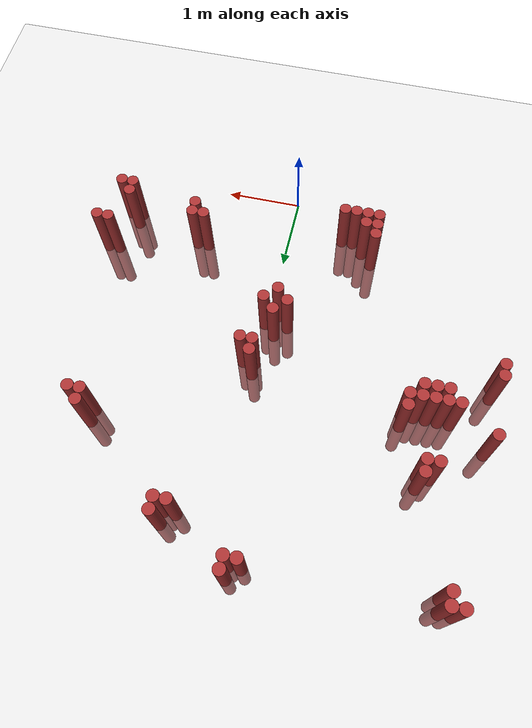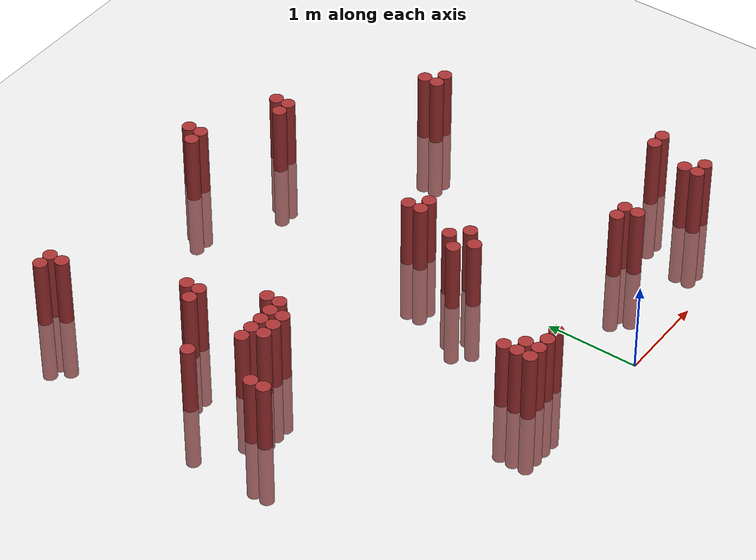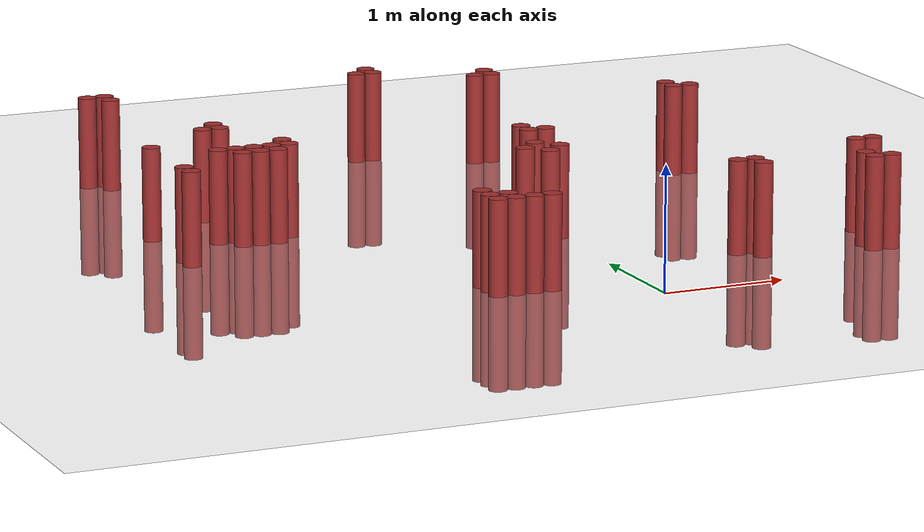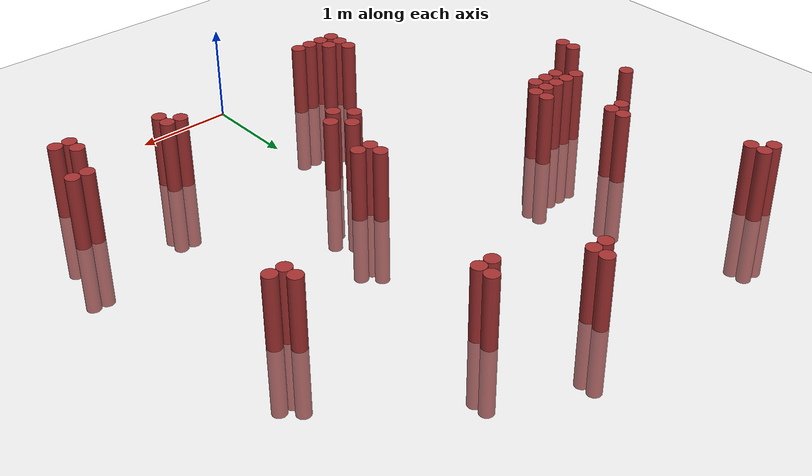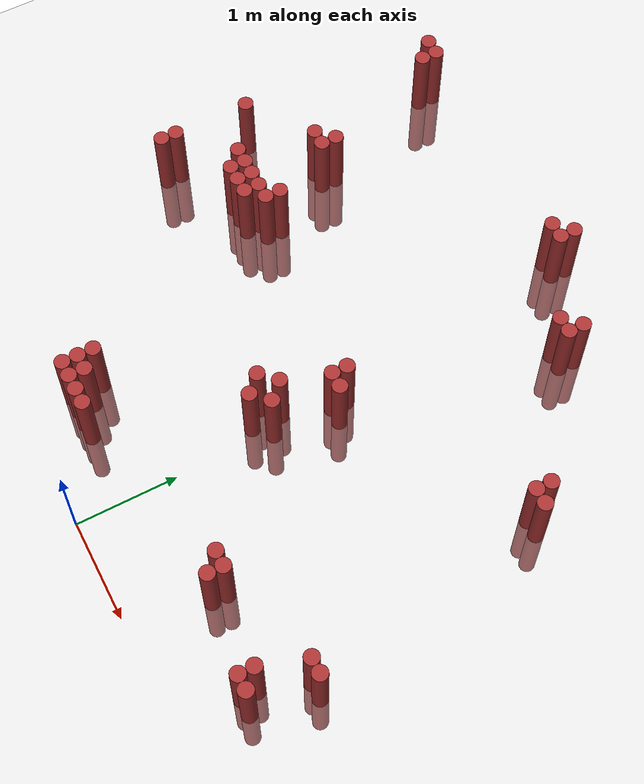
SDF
<sdf version="1.6">
 <world name="default">
  <model name="ground_plane">
   <static>1</static>
   <link name="link">
    <collision name="collision">
     <geometry><plane><normal>0 0 1</normal><size>100 100</size></plane></geometry>
     <surface><friction><ode><mu>100</mu><mu2>50</mu2></ode></friction></surface>
    </collision>
    <visual name="visual">
     <cast_shadows>0</cast_shadows>
     <geometry><plane><normal>0 0 1</normal><size>100 100</size></plane></geometry>
     <material>
      <script><uri>file://media/materials/scripts/gazebo.material</uri><name>Gazebo/Grey</name></script>
     </material>
    </visual>
   </link>
  </model>
  <model name="unit_cylinder_280">
   <static>1</static>
   <pose>-2.975000 2.275000 0.000000 0.000000 0.000000 0.000000</pose>
   <link name="link">
    <inertial>
     <mass>1</mass>
     <inertia><ixx>0.145833</ixx><ixy>0</ixy><ixz>0</ixz><iyy>0.145833</iyy><iyz>0</iyz><izz>0.125</izz></inertia>
    </inertial>
    <collision name="collision">
     <geometry><cylinder><radius>0.075000</radius><length>1.5</length></cylinder></geometry>
    </collision>
    <visual name="visual">
     <geometry><cylinder><radius>0.075000</radius><length>1.5</length></cylinder></geometry>
     <material>
      <ambient>0.648000 0.192000 0.192000 1</ambient>
      <diffuse>0.648000 0.192000 0.192000 1</diffuse>
     </material>
     <material>
      <script><name>Gazebo/Grey</name><uri>file://media/materials/scripts/gazebo.material</uri></script>
     </material>
    </visual>
   </link>
  </model>
  <model name="unit_cylinder_281">
   <static>1</static>
   <pose>-2.975000 2.425000 0.000000 0.000000 0.000000 0.000000</pose>
   <link name="link">
    <inertial>
     <mass>1</mass>
     <inertia><ixx>0.145833</ixx><ixy>0</ixy><ixz>0</ixz><iyy>0.145833</iyy><iyz>0</iyz><izz>0.125</izz></inertia>
    </inertial>
    <collision name="collision">
     <geometry><cylinder><radius>0.075000</radius><length>1.5</length></cylinder></geometry>
    </collision>
    <visual name="visual">
     <geometry><cylinder><radius>0.075000</radius><length>1.5</length></cylinder></geometry>
     <material>
      <ambient>0.648000 0.192000 0.192000 1</ambient>
      <diffuse>0.648000 0.192000 0.192000 1</diffuse>
     </material>
     <material>
      <script><name>Gazebo/Grey</name><uri>file://media/materials/scripts/gazebo.material</uri></script>
     </material>
    </visual>
   </link>
  </model>
  <model name="unit_cylinder_282">
   <static>1</static>
   <pose>-2.975000 3.175000 0.000000 0.000000 0.000000 0.000000</pose>
   <link name="link">
    <inertial>
     <mass>1</mass>
     <inertia><ixx>0.145833</ixx><ixy>0</ixy><ixz>0</ixz><iyy>0.145833</iyy><iyz>0</iyz><izz>0.125</izz></inertia>
    </inertial>
    <collision name="collision">
     <geometry><cylinder><radius>0.075000</radius><length>1.5</length></cylinder></geometry>
    </collision>
    <visual name="visual">
     <geometry><cylinder><radius>0.075000</radius><length>1.5</length></cylinder></geometry>
     <material>
      <ambient>0.648000 0.192000 0.192000 1</ambient>
      <diffuse>0.648000 0.192000 0.192000 1</diffuse>
     </material>
     <material>
      <script><name>Gazebo/Grey</name><uri>file://media/materials/scripts/gazebo.material</uri></script>
     </material>
    </visual>
   </link>
  </model>
  <model name="unit_cylinder_283">
   <static>1</static>
   <pose>-2.825000 5.125000 0.000000 0.000000 0.000000 0.000000</pose>
   <link name="link">
    <inertial>
     <mass>1</mass>
     <inertia><ixx>0.145833</ixx><ixy>0</ixy><ixz>0</ixz><iyy>0.145833</iyy><iyz>0</iyz><izz>0.125</izz></inertia>
    </inertial>
    <collision name="collision">
     <geometry><cylinder><radius>0.075000</radius><length>1.5</length></cylinder></geometry>
    </collision>
    <visual name="visual">
     <geometry><cylinder><radius>0.075000</radius><length>1.5</length></cylinder></geometry>
     <material>
      <ambient>0.648000 0.192000 0.192000 1</ambient>
      <diffuse>0.648000 0.192000 0.192000 1</diffuse>
     </material>
     <material>
      <script><name>Gazebo/Grey</name><uri>file://media/materials/scripts/gazebo.material</uri></script>
     </material>
    </visual>
   </link>
  </model>
  <model name="unit_cylinder_284">
   <static>1</static>
   <pose>-2.675000 4.975000 0.000000 0.000000 0.000000 0.000000</pose>
   <link name="link">
    <inertial>
     <mass>1</mass>
     <inertia><ixx>0.145833</ixx><ixy>0</ixy><ixz>0</ixz><iyy>0.145833</iyy><iyz>0</iyz><izz>0.125</izz></inertia>
    </inertial>
    <collision name="collision">
     <geometry><cylinder><radius>0.075000</radius><length>1.5</length></cylinder></geometry>
    </collision>
    <visual name="visual">
     <geometry><cylinder><radius>0.075000</radius><length>1.5</length></cylinder></geometry>
     <material>
      <ambient>0.648000 0.192000 0.192000 1</ambient>
      <diffuse>0.648000 0.192000 0.192000 1</diffuse>
     </material>
     <material>
      <script><name>Gazebo/Grey</name><uri>file://media/materials/scripts/gazebo.material</uri></script>
     </material>
    </visual>
   </link>
  </model>
  <model name="unit_cylinder_285">
   <static>1</static>
   <pose>-2.675000 5.125000 0.000000 0.000000 0.000000 0.000000</pose>
   <link name="link">
    <inertial>
     <mass>1</mass>
     <inertia><ixx>0.145833</ixx><ixy>0</ixy><ixz>0</ixz><iyy>0.145833</iyy><iyz>0</iyz><izz>0.125</izz></inertia>
    </inertial>
    <collision name="collision">
     <geometry><cylinder><radius>0.075000</radius><length>1.5</length></cylinder></geometry>
    </collision>
    <visual name="visual">
     <geometry><cylinder><radius>0.075000</radius><length>1.5</length></cylinder></geometry>
     <material>
      <ambient>0.648000 0.192000 0.192000 1</ambient>
      <diffuse>0.648000 0.192000 0.192000 1</diffuse>
     </material>
     <material>
      <script><name>Gazebo/Grey</name><uri>file://media/materials/scripts/gazebo.material</uri></script>
     </material>
    </visual>
   </link>
  </model>
  <model name="unit_cylinder_286">
   <static>1</static>
   <pose>-2.525000 2.875000 0.000000 0.000000 0.000000 0.000000</pose>
   <link name="link">
    <inertial>
     <mass>1</mass>
     <inertia><ixx>0.145833</ixx><ixy>0</ixy><ixz>0</ixz><iyy>0.145833</iyy><iyz>0</iyz><izz>0.125</izz></inertia>
    </inertial>
    <collision name="collision">
     <geometry><cylinder><radius>0.075000</radius><length>1.5</length></cylinder></geometry>
    </collision>
    <visual name="visual">
     <geometry><cylinder><radius>0.075000</radius><length>1.5</length></cylinder></geometry>
     <material>
      <ambient>0.648000 0.192000 0.192000 1</ambient>
      <diffuse>0.648000 0.192000 0.192000 1</diffuse>
     </material>
     <material>
      <script><name>Gazebo/Grey</name><uri>file://media/materials/scripts/gazebo.material</uri></script>
     </material>
    </visual>
   </link>
  </model>
  <model name="unit_cylinder_287">
   <static>1</static>
   <pose>-2.375000 2.725000 0.000000 0.000000 0.000000 0.000000</pose>
   <link name="link">
    <inertial>
     <mass>1</mass>
     <inertia><ixx>0.145833</ixx><ixy>0</ixy><ixz>0</ixz><iyy>0.145833</iyy><iyz>0</iyz><izz>0.125</izz></inertia>
    </inertial>
    <collision name="collision">
     <geometry><cylinder><radius>0.075000</radius><length>1.5</length></cylinder></geometry>
    </collision>
    <visual name="visual">
     <geometry><cylinder><radius>0.075000</radius><length>1.5</length></cylinder></geometry>
     <material>
      <ambient>0.648000 0.192000 0.192000 1</ambient>
      <diffuse>0.648000 0.192000 0.192000 1</diffuse>
     </material>
     <material>
      <script><name>Gazebo/Grey</name><uri>file://media/materials/scripts/gazebo.material</uri></script>
     </material>
    </visual>
   </link>
  </model>
  <model name="unit_cylinder_288">
   <static>1</static>
   <pose>-2.375000 2.875000 0.000000 0.000000 0.000000 0.000000</pose>
   <link name="link">
    <inertial>
     <mass>1</mass>
     <inertia><ixx>0.145833</ixx><ixy>0</ixy><ixz>0</ixz><iyy>0.145833</iyy><iyz>0</iyz><izz>0.125</izz></inertia>
    </inertial>
    <collision name="collision">
     <geometry><cylinder><radius>0.075000</radius><length>1.5</length></cylinder></geometry>
    </collision>
    <visual name="visual">
     <geometry><cylinder><radius>0.075000</radius><length>1.5</length></cylinder></geometry>
     <material>
      <ambient>0.648000 0.192000 0.192000 1</ambient>
      <diffuse>0.648000 0.192000 0.192000 1</diffuse>
     </material>
     <material>
      <script><name>Gazebo/Grey</name><uri>file://media/materials/scripts/gazebo.material</uri></script>
     </material>
    </visual>
   </link>
  </model>
  <model name="unit_cylinder_289">
   <static>1</static>
   <pose>-2.375000 3.625000 0.000000 0.000000 0.000000 0.000000</pose>
   <link name="link">
    <inertial>
     <mass>1</mass>
     <inertia><ixx>0.145833</ixx><ixy>0</ixy><ixz>0</ixz><iyy>0.145833</iyy><iyz>0</iyz><izz>0.125</izz></inertia>
    </inertial>
    <collision name="collision">
     <geometry><cylinder><radius>0.075000</radius><length>1.5</length></cylinder></geometry>
    </collision>
    <visual name="visual">
     <geometry><cylinder><radius>0.075000</radius><length>1.5</length></cylinder></geometry>
     <material>
      <ambient>0.648000 0.192000 0.192000 1</ambient>
      <diffuse>0.648000 0.192000 0.192000 1</diffuse>
     </material>
     <material>
      <script><name>Gazebo/Grey</name><uri>file://media/materials/scripts/gazebo.material</uri></script>
     </material>
    </visual>
   </link>
  </model>
  <model name="unit_cylinder_290">
   <static>1</static>
   <pose>-2.225000 2.725000 0.000000 0.000000 0.000000 0.000000</pose>
   <link name="link">
    <inertial>
     <mass>1</mass>
     <inertia><ixx>0.145833</ixx><ixy>0</ixy><ixz>0</ixz><iyy>0.145833</iyy><iyz>0</iyz><izz>0.125</izz></inertia>
    </inertial>
    <collision name="collision">
     <geometry><cylinder><radius>0.075000</radius><length>1.5</length></cylinder></geometry>
    </collision>
    <visual name="visual">
     <geometry><cylinder><radius>0.075000</radius><length>1.5</length></cylinder></geometry>
     <material>
      <ambient>0.648000 0.192000 0.192000 1</ambient>
      <diffuse>0.648000 0.192000 0.192000 1</diffuse>
     </material>
     <material>
      <script><name>Gazebo/Grey</name><uri>file://media/materials/scripts/gazebo.material</uri></script>
     </material>
    </visual>
   </link>
  </model>
  <model name="unit_cylinder_291">
   <static>1</static>
   <pose>-2.225000 2.875000 0.000000 0.000000 0.000000 0.000000</pose>
   <link name="link">
    <inertial>
     <mass>1</mass>
     <inertia><ixx>0.145833</ixx><ixy>0</ixy><ixz>0</ixz><iyy>0.145833</iyy><iyz>0</iyz><izz>0.125</izz></inertia>
    </inertial>
    <collision name="collision">
     <geometry><cylinder><radius>0.075000</radius><length>1.5</length></cylinder></geometry>
    </collision>
    <visual name="visual">
     <geometry><cylinder><radius>0.075000</radius><length>1.5</length></cylinder></geometry>
     <material>
      <ambient>0.648000 0.192000 0.192000 1</ambient>
      <diffuse>0.648000 0.192000 0.192000 1</diffuse>
     </material>
     <material>
      <script><name>Gazebo/Grey</name><uri>file://media/materials/scripts/gazebo.material</uri></script>
     </material>
    </visual>
   </link>
  </model>
  <model name="unit_cylinder_292">
   <static>1</static>
   <pose>-2.225000 3.625000 0.000000 0.000000 0.000000 0.000000</pose>
   <link name="link">
    <inertial>
     <mass>1</mass>
     <inertia><ixx>0.145833</ixx><ixy>0</ixy><ixz>0</ixz><iyy>0.145833</iyy><iyz>0</iyz><izz>0.125</izz></inertia>
    </inertial>
    <collision name="collision">
     <geometry><cylinder><radius>0.075000</radius><length>1.5</length></cylinder></geometry>
    </collision>
    <visual name="visual">
     <geometry><cylinder><radius>0.075000</radius><length>1.5</length></cylinder></geometry>
     <material>
      <ambient>0.648000 0.192000 0.192000 1</ambient>
      <diffuse>0.648000 0.192000 0.192000 1</diffuse>
     </material>
     <material>
      <script><name>Gazebo/Grey</name><uri>file://media/materials/scripts/gazebo.material</uri></script>
     </material>
    </visual>
   </link>
  </model>
  <model name="unit_cylinder_293">
   <static>1</static>
   <pose>-2.225000 3.775000 0.000000 0.000000 0.000000 0.000000</pose>
   <link name="link">
    <inertial>
     <mass>1</mass>
     <inertia><ixx>0.145833</ixx><ixy>0</ixy><ixz>0</ixz><iyy>0.145833</iyy><iyz>0</iyz><izz>0.125</izz></inertia>
    </inertial>
    <collision name="collision">
     <geometry><cylinder><radius>0.075000</radius><length>1.5</length></cylinder></geometry>
    </collision>
    <visual name="visual">
     <geometry><cylinder><radius>0.075000</radius><length>1.5</length></cylinder></geometry>
     <material>
      <ambient>0.648000 0.192000 0.192000 1</ambient>
      <diffuse>0.648000 0.192000 0.192000 1</diffuse>
     </material>
     <material>
      <script><name>Gazebo/Grey</name><uri>file://media/materials/scripts/gazebo.material</uri></script>
     </material>
    </visual>
   </link>
  </model>
  <model name="unit_cylinder_296">
   <static>1</static>
   <pose>-2.075000 2.725000 0.000000 0.000000 0.000000 0.000000</pose>
   <link name="link">
    <inertial>
     <mass>1</mass>
     <inertia><ixx>0.145833</ixx><ixy>0</ixy><ixz>0</ixz><iyy>0.145833</iyy><iyz>0</iyz><izz>0.125</izz></inertia>
    </inertial>
    <collision name="collision">
     <geometry><cylinder><radius>0.075000</radius><length>1.5</length></cylinder></geometry>
    </collision>
    <visual name="visual">
     <geometry><cylinder><radius>0.075000</radius><length>1.5</length></cylinder></geometry>
     <material>
      <ambient>0.648000 0.192000 0.192000 1</ambient>
      <diffuse>0.648000 0.192000 0.192000 1</diffuse>
     </material>
     <material>
      <script><name>Gazebo/Grey</name><uri>file://media/materials/scripts/gazebo.material</uri></script>
     </material>
    </visual>
   </link>
  </model>
  <model name="unit_cylinder_297">
   <static>1</static>
   <pose>-2.075000 2.875000 0.000000 0.000000 0.000000 0.000000</pose>
   <link name="link">
    <inertial>
     <mass>1</mass>
     <inertia><ixx>0.145833</ixx><ixy>0</ixy><ixz>0</ixz><iyy>0.145833</iyy><iyz>0</iyz><izz>0.125</izz></inertia>
    </inertial>
    <collision name="collision">
     <geometry><cylinder><radius>0.075000</radius><length>1.5</length></cylinder></geometry>
    </collision>
    <visual name="visual">
     <geometry><cylinder><radius>0.075000</radius><length>1.5</length></cylinder></geometry>
     <material>
      <ambient>0.648000 0.192000 0.192000 1</ambient>
      <diffuse>0.648000 0.192000 0.192000 1</diffuse>
     </material>
     <material>
      <script><name>Gazebo/Grey</name><uri>file://media/materials/scripts/gazebo.material</uri></script>
     </material>
    </visual>
   </link>
  </model>
  <model name="unit_cylinder_300">
   <static>1</static>
   <pose>-1.925000 2.875000 0.000000 0.000000 0.000000 0.000000</pose>
   <link name="link">
    <inertial>
     <mass>1</mass>
     <inertia><ixx>0.145833</ixx><ixy>0</ixy><ixz>0</ixz><iyy>0.145833</iyy><iyz>0</iyz><izz>0.125</izz></inertia>
    </inertial>
    <collision name="collision">
     <geometry><cylinder><radius>0.075000</radius><length>1.5</length></cylinder></geometry>
    </collision>
    <visual name="visual">
     <geometry><cylinder><radius>0.075000</radius><length>1.5</length></cylinder></geometry>
     <material>
      <ambient>0.648000 0.192000 0.192000 1</ambient>
      <diffuse>0.648000 0.192000 0.192000 1</diffuse>
     </material>
     <material>
      <script><name>Gazebo/Grey</name><uri>file://media/materials/scripts/gazebo.material</uri></script>
     </material>
    </visual>
   </link>
  </model>
  <model name="unit_cylinder_301">
   <static>1</static>
   <pose>-1.925000 3.025000 0.000000 0.000000 0.000000 0.000000</pose>
   <link name="link">
    <inertial>
     <mass>1</mass>
     <inertia><ixx>0.145833</ixx><ixy>0</ixy><ixz>0</ixz><iyy>0.145833</iyy><iyz>0</iyz><izz>0.125</izz></inertia>
    </inertial>
    <collision name="collision">
     <geometry><cylinder><radius>0.075000</radius><length>1.5</length></cylinder></geometry>
    </collision>
    <visual name="visual">
     <geometry><cylinder><radius>0.075000</radius><length>1.5</length></cylinder></geometry>
     <material>
      <ambient>0.648000 0.192000 0.192000 1</ambient>
      <diffuse>0.648000 0.192000 0.192000 1</diffuse>
     </material>
     <material>
      <script><name>Gazebo/Grey</name><uri>file://media/materials/scripts/gazebo.material</uri></script>
     </material>
    </visual>
   </link>
  </model>
  <model name="unit_cylinder_306">
   <static>1</static>
   <pose>-1.175000 0.475000 0.000000 0.000000 0.000000 0.000000</pose>
   <link name="link">
    <inertial>
     <mass>1</mass>
     <inertia><ixx>0.145833</ixx><ixy>0</ixy><ixz>0</ixz><iyy>0.145833</iyy><iyz>0</iyz><izz>0.125</izz></inertia>
    </inertial>
    <collision name="collision">
     <geometry><cylinder><radius>0.075000</radius><length>1.5</length></cylinder></geometry>
    </collision>
    <visual name="visual">
     <geometry><cylinder><radius>0.075000</radius><length>1.5</length></cylinder></geometry>
     <material>
      <ambient>0.648000 0.192000 0.192000 1</ambient>
      <diffuse>0.648000 0.192000 0.192000 1</diffuse>
     </material>
     <material>
      <script><name>Gazebo/Grey</name><uri>file://media/materials/scripts/gazebo.material</uri></script>
     </material>
    </visual>
   </link>
  </model>
  <model name="unit_cylinder_307">
   <static>1</static>
   <pose>-1.175000 0.625000 0.000000 0.000000 0.000000 0.000000</pose>
   <link name="link">
    <inertial>
     <mass>1</mass>
     <inertia><ixx>0.145833</ixx><ixy>0</ixy><ixz>0</ixz><iyy>0.145833</iyy><iyz>0</iyz><izz>0.125</izz></inertia>
    </inertial>
    <collision name="collision">
     <geometry><cylinder><radius>0.075000</radius><length>1.5</length></cylinder></geometry>
    </collision>
    <visual name="visual">
     <geometry><cylinder><radius>0.075000</radius><length>1.5</length></cylinder></geometry>
     <material>
      <ambient>0.648000 0.192000 0.192000 1</ambient>
      <diffuse>0.648000 0.192000 0.192000 1</diffuse>
     </material>
     <material>
      <script><name>Gazebo/Grey</name><uri>file://media/materials/scripts/gazebo.material</uri></script>
     </material>
    </visual>
   </link>
  </model>
  <model name="unit_cylinder_308">
   <static>1</static>
   <pose>-1.175000 0.775000 0.000000 0.000000 0.000000 0.000000</pose>
   <link name="link">
    <inertial>
     <mass>1</mass>
     <inertia><ixx>0.145833</ixx><ixy>0</ixy><ixz>0</ixz><iyy>0.145833</iyy><iyz>0</iyz><izz>0.125</izz></inertia>
    </inertial>
    <collision name="collision">
     <geometry><cylinder><radius>0.075000</radius><length>1.5</length></cylinder></geometry>
    </collision>
    <visual name="visual">
     <geometry><cylinder><radius>0.075000</radius><length>1.5</length></cylinder></geometry>
     <material>
      <ambient>0.648000 0.192000 0.192000 1</ambient>
      <diffuse>0.648000 0.192000 0.192000 1</diffuse>
     </material>
     <material>
      <script><name>Gazebo/Grey</name><uri>file://media/materials/scripts/gazebo.material</uri></script>
     </material>
    </visual>
   </link>
  </model>
  <model name="unit_cylinder_311">
   <static>1</static>
   <pose>-1.025000 0.475000 0.000000 0.000000 0.000000 0.000000</pose>
   <link name="link">
    <inertial>
     <mass>1</mass>
     <inertia><ixx>0.145833</ixx><ixy>0</ixy><ixz>0</ixz><iyy>0.145833</iyy><iyz>0</iyz><izz>0.125</izz></inertia>
    </inertial>
    <collision name="collision">
     <geometry><cylinder><radius>0.075000</radius><length>1.5</length></cylinder></geometry>
    </collision>
    <visual name="visual">
     <geometry><cylinder><radius>0.075000</radius><length>1.5</length></cylinder></geometry>
     <material>
      <ambient>0.648000 0.192000 0.192000 1</ambient>
      <diffuse>0.648000 0.192000 0.192000 1</diffuse>
     </material>
     <material>
      <script><name>Gazebo/Grey</name><uri>file://media/materials/scripts/gazebo.material</uri></script>
     </material>
    </visual>
   </link>
  </model>
  <model name="unit_cylinder_312">
   <static>1</static>
   <pose>-1.025000 0.625000 0.000000 0.000000 0.000000 0.000000</pose>
   <link name="link">
    <inertial>
     <mass>1</mass>
     <inertia><ixx>0.145833</ixx><ixy>0</ixy><ixz>0</ixz><iyy>0.145833</iyy><iyz>0</iyz><izz>0.125</izz></inertia>
    </inertial>
    <collision name="collision">
     <geometry><cylinder><radius>0.075000</radius><length>1.5</length></cylinder></geometry>
    </collision>
    <visual name="visual">
     <geometry><cylinder><radius>0.075000</radius><length>1.5</length></cylinder></geometry>
     <material>
      <ambient>0.648000 0.192000 0.192000 1</ambient>
      <diffuse>0.648000 0.192000 0.192000 1</diffuse>
     </material>
     <material>
      <script><name>Gazebo/Grey</name><uri>file://media/materials/scripts/gazebo.material</uri></script>
     </material>
    </visual>
   </link>
  </model>
  <model name="unit_cylinder_317">
   <static>1</static>
   <pose>-0.875000 0.475000 0.000000 0.000000 0.000000 0.000000</pose>
   <link name="link">
    <inertial>
     <mass>1</mass>
     <inertia><ixx>0.145833</ixx><ixy>0</ixy><ixz>0</ixz><iyy>0.145833</iyy><iyz>0</iyz><izz>0.125</izz></inertia>
    </inertial>
    <collision name="collision">
     <geometry><cylinder><radius>0.075000</radius><length>1.5</length></cylinder></geometry>
    </collision>
    <visual name="visual">
     <geometry><cylinder><radius>0.075000</radius><length>1.5</length></cylinder></geometry>
     <material>
      <ambient>0.648000 0.192000 0.192000 1</ambient>
      <diffuse>0.648000 0.192000 0.192000 1</diffuse>
     </material>
     <material>
      <script><name>Gazebo/Grey</name><uri>file://media/materials/scripts/gazebo.material</uri></script>
     </material>
    </visual>
   </link>
  </model>
  <model name="unit_cylinder_320">
   <static>1</static>
   <pose>-0.725000 0.475000 0.000000 0.000000 0.000000 0.000000</pose>
   <link name="link">
    <inertial>
     <mass>1</mass>
     <inertia><ixx>0.145833</ixx><ixy>0</ixy><ixz>0</ixz><iyy>0.145833</iyy><iyz>0</iyz><izz>0.125</izz></inertia>
    </inertial>
    <collision name="collision">
     <geometry><cylinder><radius>0.075000</radius><length>1.5</length></cylinder></geometry>
    </collision>
    <visual name="visual">
     <geometry><cylinder><radius>0.075000</radius><length>1.5</length></cylinder></geometry>
     <material>
      <ambient>0.648000 0.192000 0.192000 1</ambient>
      <diffuse>0.648000 0.192000 0.192000 1</diffuse>
     </material>
     <material>
      <script><name>Gazebo/Grey</name><uri>file://media/materials/scripts/gazebo.material</uri></script>
     </material>
    </visual>
   </link>
  </model>
  <model name="unit_cylinder_321">
   <static>1</static>
   <pose>-0.425000 5.125000 0.000000 0.000000 0.000000 0.000000</pose>
   <link name="link">
    <inertial>
     <mass>1</mass>
     <inertia><ixx>0.145833</ixx><ixy>0</ixy><ixz>0</ixz><iyy>0.145833</iyy><iyz>0</iyz><izz>0.125</izz></inertia>
    </inertial>
    <collision name="collision">
     <geometry><cylinder><radius>0.075000</radius><length>1.5</length></cylinder></geometry>
    </collision>
    <visual name="visual">
     <geometry><cylinder><radius>0.075000</radius><length>1.5</length></cylinder></geometry>
     <material>
      <ambient>0.648000 0.192000 0.192000 1</ambient>
      <diffuse>0.648000 0.192000 0.192000 1</diffuse>
     </material>
     <material>
      <script><name>Gazebo/Grey</name><uri>file://media/materials/scripts/gazebo.material</uri></script>
     </material>
    </visual>
   </link>
  </model>
  <model name="unit_cylinder_322">
   <static>1</static>
   <pose>-0.275000 1.975000 0.000000 0.000000 0.000000 0.000000</pose>
   <link name="link">
    <inertial>
     <mass>1</mass>
     <inertia><ixx>0.145833</ixx><ixy>0</ixy><ixz>0</ixz><iyy>0.145833</iyy><iyz>0</iyz><izz>0.125</izz></inertia>
    </inertial>
    <collision name="collision">
     <geometry><cylinder><radius>0.075000</radius><length>1.5</length></cylinder></geometry>
    </collision>
    <visual name="visual">
     <geometry><cylinder><radius>0.075000</radius><length>1.5</length></cylinder></geometry>
     <material>
      <ambient>0.648000 0.192000 0.192000 1</ambient>
      <diffuse>0.648000 0.192000 0.192000 1</diffuse>
     </material>
     <material>
      <script><name>Gazebo/Grey</name><uri>file://media/materials/scripts/gazebo.material</uri></script>
     </material>
    </visual>
   </link>
  </model>
  <model name="unit_cylinder_323">
   <static>1</static>
   <pose>-0.275000 5.125000 0.000000 0.000000 0.000000 0.000000</pose>
   <link name="link">
    <inertial>
     <mass>1</mass>
     <inertia><ixx>0.145833</ixx><ixy>0</ixy><ixz>0</ixz><iyy>0.145833</iyy><iyz>0</iyz><izz>0.125</izz></inertia>
    </inertial>
    <collision name="collision">
     <geometry><cylinder><radius>0.075000</radius><length>1.5</length></cylinder></geometry>
    </collision>
    <visual name="visual">
     <geometry><cylinder><radius>0.075000</radius><length>1.5</length></cylinder></geometry>
     <material>
      <ambient>0.648000 0.192000 0.192000 1</ambient>
      <diffuse>0.648000 0.192000 0.192000 1</diffuse>
     </material>
     <material>
      <script><name>Gazebo/Grey</name><uri>file://media/materials/scripts/gazebo.material</uri></script>
     </material>
    </visual>
   </link>
  </model>
  <model name="unit_cylinder_324">
   <static>1</static>
   <pose>-0.275000 5.275000 0.000000 0.000000 0.000000 0.000000</pose>
   <link name="link">
    <inertial>
     <mass>1</mass>
     <inertia><ixx>0.145833</ixx><ixy>0</ixy><ixz>0</ixz><iyy>0.145833</iyy><iyz>0</iyz><izz>0.125</izz></inertia>
    </inertial>
    <collision name="collision">
     <geometry><cylinder><radius>0.075000</radius><length>1.5</length></cylinder></geometry>
    </collision>
    <visual name="visual">
     <geometry><cylinder><radius>0.075000</radius><length>1.5</length></cylinder></geometry>
     <material>
      <ambient>0.648000 0.192000 0.192000 1</ambient>
      <diffuse>0.648000 0.192000 0.192000 1</diffuse>
     </material>
     <material>
      <script><name>Gazebo/Grey</name><uri>file://media/materials/scripts/gazebo.material</uri></script>
     </material>
    </visual>
   </link>
  </model>
  <model name="unit_cylinder_325">
   <static>1</static>
   <pose>-0.125000 1.825000 0.000000 0.000000 0.000000 0.000000</pose>
   <link name="link">
    <inertial>
     <mass>1</mass>
     <inertia><ixx>0.145833</ixx><ixy>0</ixy><ixz>0</ixz><iyy>0.145833</iyy><iyz>0</iyz><izz>0.125</izz></inertia>
    </inertial>
    <collision name="collision">
     <geometry><cylinder><radius>0.075000</radius><length>1.5</length></cylinder></geometry>
    </collision>
    <visual name="visual">
     <geometry><cylinder><radius>0.075000</radius><length>1.5</length></cylinder></geometry>
     <material>
      <ambient>0.648000 0.192000 0.192000 1</ambient>
      <diffuse>0.648000 0.192000 0.192000 1</diffuse>
     </material>
     <material>
      <script><name>Gazebo/Grey</name><uri>file://media/materials/scripts/gazebo.material</uri></script>
     </material>
    </visual>
   </link>
  </model>
  <model name="unit_cylinder_326">
   <static>1</static>
   <pose>-0.125000 2.125000 0.000000 0.000000 0.000000 0.000000</pose>
   <link name="link">
    <inertial>
     <mass>1</mass>
     <inertia><ixx>0.145833</ixx><ixy>0</ixy><ixz>0</ixz><iyy>0.145833</iyy><iyz>0</iyz><izz>0.125</izz></inertia>
    </inertial>
    <collision name="collision">
     <geometry><cylinder><radius>0.075000</radius><length>1.5</length></cylinder></geometry>
    </collision>
    <visual name="visual">
     <geometry><cylinder><radius>0.075000</radius><length>1.5</length></cylinder></geometry>
     <material>
      <ambient>0.648000 0.192000 0.192000 1</ambient>
      <diffuse>0.648000 0.192000 0.192000 1</diffuse>
     </material>
     <material>
      <script><name>Gazebo/Grey</name><uri>file://media/materials/scripts/gazebo.material</uri></script>
     </material>
    </visual>
   </link>
  </model>
  <model name="unit_cylinder_327">
   <static>1</static>
   <pose>0.025000 1.975000 0.000000 0.000000 0.000000 0.000000</pose>
   <link name="link">
    <inertial>
     <mass>1</mass>
     <inertia><ixx>0.145833</ixx><ixy>0</ixy><ixz>0</ixz><iyy>0.145833</iyy><iyz>0</iyz><izz>0.125</izz></inertia>
    </inertial>
    <collision name="collision">
     <geometry><cylinder><radius>0.075000</radius><length>1.5</length></cylinder></geometry>
    </collision>
    <visual name="visual">
     <geometry><cylinder><radius>0.075000</radius><length>1.5</length></cylinder></geometry>
     <material>
      <ambient>0.648000 0.192000 0.192000 1</ambient>
      <diffuse>0.648000 0.192000 0.192000 1</diffuse>
     </material>
     <material>
      <script><name>Gazebo/Grey</name><uri>file://media/materials/scripts/gazebo.material</uri></script>
     </material>
    </visual>
   </link>
  </model>
  <model name="unit_cylinder_328">
   <static>1</static>
   <pose>0.025000 2.575000 0.000000 0.000000 0.000000 0.000000</pose>
   <link name="link">
    <inertial>
     <mass>1</mass>
     <inertia><ixx>0.145833</ixx><ixy>0</ixy><ixz>0</ixz><iyy>0.145833</iyy><iyz>0</iyz><izz>0.125</izz></inertia>
    </inertial>
    <collision name="collision">
     <geometry><cylinder><radius>0.075000</radius><length>1.5</length></cylinder></geometry>
    </collision>
    <visual name="visual">
     <geometry><cylinder><radius>0.075000</radius><length>1.5</length></cylinder></geometry>
     <material>
      <ambient>0.648000 0.192000 0.192000 1</ambient>
      <diffuse>0.648000 0.192000 0.192000 1</diffuse>
     </material>
     <material>
      <script><name>Gazebo/Grey</name><uri>file://media/materials/scripts/gazebo.material</uri></script>
     </material>
    </visual>
   </link>
  </model>
  <model name="unit_cylinder_329">
   <static>1</static>
   <pose>0.025000 2.725000 0.000000 0.000000 0.000000 0.000000</pose>
   <link name="link">
    <inertial>
     <mass>1</mass>
     <inertia><ixx>0.145833</ixx><ixy>0</ixy><ixz>0</ixz><iyy>0.145833</iyy><iyz>0</iyz><izz>0.125</izz></inertia>
    </inertial>
    <collision name="collision">
     <geometry><cylinder><radius>0.075000</radius><length>1.5</length></cylinder></geometry>
    </collision>
    <visual name="visual">
     <geometry><cylinder><radius>0.075000</radius><length>1.5</length></cylinder></geometry>
     <material>
      <ambient>0.648000 0.192000 0.192000 1</ambient>
      <diffuse>0.648000 0.192000 0.192000 1</diffuse>
     </material>
     <material>
      <script><name>Gazebo/Grey</name><uri>file://media/materials/scripts/gazebo.material</uri></script>
     </material>
    </visual>
   </link>
  </model>
  <model name="unit_cylinder_330">
   <static>1</static>
   <pose>0.175000 2.575000 0.000000 0.000000 0.000000 0.000000</pose>
   <link name="link">
    <inertial>
     <mass>1</mass>
     <inertia><ixx>0.145833</ixx><ixy>0</ixy><ixz>0</ixz><iyy>0.145833</iyy><iyz>0</iyz><izz>0.125</izz></inertia>
    </inertial>
    <collision name="collision">
     <geometry><cylinder><radius>0.075000</radius><length>1.5</length></cylinder></geometry>
    </collision>
    <visual name="visual">
     <geometry><cylinder><radius>0.075000</radius><length>1.5</length></cylinder></geometry>
     <material>
      <ambient>0.648000 0.192000 0.192000 1</ambient>
      <diffuse>0.648000 0.192000 0.192000 1</diffuse>
     </material>
     <material>
      <script><name>Gazebo/Grey</name><uri>file://media/materials/scripts/gazebo.material</uri></script>
     </material>
    </visual>
   </link>
  </model>
  <model name="unit_cylinder_336">
   <static>1</static>
   <pose>0.475000 4.675000 0.000000 0.000000 0.000000 0.000000</pose>
   <link name="link">
    <inertial>
     <mass>1</mass>
     <inertia><ixx>0.145833</ixx><ixy>0</ixy><ixz>0</ixz><iyy>0.145833</iyy><iyz>0</iyz><izz>0.125</izz></inertia>
    </inertial>
    <collision name="collision">
     <geometry><cylinder><radius>0.075000</radius><length>1.5</length></cylinder></geometry>
    </collision>
    <visual name="visual">
     <geometry><cylinder><radius>0.075000</radius><length>1.5</length></cylinder></geometry>
     <material>
      <ambient>0.648000 0.192000 0.192000 1</ambient>
      <diffuse>0.648000 0.192000 0.192000 1</diffuse>
     </material>
     <material>
      <script><name>Gazebo/Grey</name><uri>file://media/materials/scripts/gazebo.material</uri></script>
     </material>
    </visual>
   </link>
  </model>
  <model name="unit_cylinder_339">
   <static>1</static>
   <pose>0.625000 4.675000 0.000000 0.000000 0.000000 0.000000</pose>
   <link name="link">
    <inertial>
     <mass>1</mass>
     <inertia><ixx>0.145833</ixx><ixy>0</ixy><ixz>0</ixz><iyy>0.145833</iyy><iyz>0</iyz><izz>0.125</izz></inertia>
    </inertial>
    <collision name="collision">
     <geometry><cylinder><radius>0.075000</radius><length>1.5</length></cylinder></geometry>
    </collision>
    <visual name="visual">
     <geometry><cylinder><radius>0.075000</radius><length>1.5</length></cylinder></geometry>
     <material>
      <ambient>0.648000 0.192000 0.192000 1</ambient>
      <diffuse>0.648000 0.192000 0.192000 1</diffuse>
     </material>
     <material>
      <script><name>Gazebo/Grey</name><uri>file://media/materials/scripts/gazebo.material</uri></script>
     </material>
    </visual>
   </link>
  </model>
  <model name="unit_cylinder_340">
   <static>1</static>
   <pose>0.625000 4.825000 0.000000 0.000000 0.000000 0.000000</pose>
   <link name="link">
    <inertial>
     <mass>1</mass>
     <inertia><ixx>0.145833</ixx><ixy>0</ixy><ixz>0</ixz><iyy>0.145833</iyy><iyz>0</iyz><izz>0.125</izz></inertia>
    </inertial>
    <collision name="collision">
     <geometry><cylinder><radius>0.075000</radius><length>1.5</length></cylinder></geometry>
    </collision>
    <visual name="visual">
     <geometry><cylinder><radius>0.075000</radius><length>1.5</length></cylinder></geometry>
     <material>
      <ambient>0.648000 0.192000 0.192000 1</ambient>
      <diffuse>0.648000 0.192000 0.192000 1</diffuse>
     </material>
     <material>
      <script><name>Gazebo/Grey</name><uri>file://media/materials/scripts/gazebo.material</uri></script>
     </material>
    </visual>
   </link>
  </model>
  <model name="unit_cylinder_341">
   <static>1</static>
   <pose>1.075000 0.925000 0.000000 0.000000 0.000000 0.000000</pose>
   <link name="link">
    <inertial>
     <mass>1</mass>
     <inertia><ixx>0.145833</ixx><ixy>0</ixy><ixz>0</ixz><iyy>0.145833</iyy><iyz>0</iyz><izz>0.125</izz></inertia>
    </inertial>
    <collision name="collision">
     <geometry><cylinder><radius>0.075000</radius><length>1.5</length></cylinder></geometry>
    </collision>
    <visual name="visual">
     <geometry><cylinder><radius>0.075000</radius><length>1.5</length></cylinder></geometry>
     <material>
      <ambient>0.648000 0.192000 0.192000 1</ambient>
      <diffuse>0.648000 0.192000 0.192000 1</diffuse>
     </material>
     <material>
      <script><name>Gazebo/Grey</name><uri>file://media/materials/scripts/gazebo.material</uri></script>
     </material>
    </visual>
   </link>
  </model>
  <model name="unit_cylinder_342">
   <static>1</static>
   <pose>1.225000 0.775000 0.000000 0.000000 0.000000 0.000000</pose>
   <link name="link">
    <inertial>
     <mass>1</mass>
     <inertia><ixx>0.145833</ixx><ixy>0</ixy><ixz>0</ixz><iyy>0.145833</iyy><iyz>0</iyz><izz>0.125</izz></inertia>
    </inertial>
    <collision name="collision">
     <geometry><cylinder><radius>0.075000</radius><length>1.5</length></cylinder></geometry>
    </collision>
    <visual name="visual">
     <geometry><cylinder><radius>0.075000</radius><length>1.5</length></cylinder></geometry>
     <material>
      <ambient>0.648000 0.192000 0.192000 1</ambient>
      <diffuse>0.648000 0.192000 0.192000 1</diffuse>
     </material>
     <material>
      <script><name>Gazebo/Grey</name><uri>file://media/materials/scripts/gazebo.material</uri></script>
     </material>
    </visual>
   </link>
  </model>
  <model name="unit_cylinder_343">
   <static>1</static>
   <pose>1.225000 0.925000 0.000000 0.000000 0.000000 0.000000</pose>
   <link name="link">
    <inertial>
     <mass>1</mass>
     <inertia><ixx>0.145833</ixx><ixy>0</ixy><ixz>0</ixz><iyy>0.145833</iyy><iyz>0</iyz><izz>0.125</izz></inertia>
    </inertial>
    <collision name="collision">
     <geometry><cylinder><radius>0.075000</radius><length>1.5</length></cylinder></geometry>
    </collision>
    <visual name="visual">
     <geometry><cylinder><radius>0.075000</radius><length>1.5</length></cylinder></geometry>
     <material>
      <ambient>0.648000 0.192000 0.192000 1</ambient>
      <diffuse>0.648000 0.192000 0.192000 1</diffuse>
     </material>
     <material>
      <script><name>Gazebo/Grey</name><uri>file://media/materials/scripts/gazebo.material</uri></script>
     </material>
    </visual>
   </link>
  </model>
  <model name="unit_cylinder_352">
   <static>1</static>
   <pose>1.825000 3.625000 0.000000 0.000000 0.000000 0.000000</pose>
   <link name="link">
    <inertial>
     <mass>1</mass>
     <inertia><ixx>0.145833</ixx><ixy>0</ixy><ixz>0</ixz><iyy>0.145833</iyy><iyz>0</iyz><izz>0.125</izz></inertia>
    </inertial>
    <collision name="collision">
     <geometry><cylinder><radius>0.075000</radius><length>1.5</length></cylinder></geometry>
    </collision>
    <visual name="visual">
     <geometry><cylinder><radius>0.075000</radius><length>1.5</length></cylinder></geometry>
     <material>
      <ambient>0.648000 0.192000 0.192000 1</ambient>
      <diffuse>0.648000 0.192000 0.192000 1</diffuse>
     </material>
     <material>
      <script><name>Gazebo/Grey</name><uri>file://media/materials/scripts/gazebo.material</uri></script>
     </material>
    </visual>
   </link>
  </model>
  <model name="unit_cylinder_353">
   <static>1</static>
   <pose>1.825000 3.775000 0.000000 0.000000 0.000000 0.000000</pose>
   <link name="link">
    <inertial>
     <mass>1</mass>
     <inertia><ixx>0.145833</ixx><ixy>0</ixy><ixz>0</ixz><iyy>0.145833</iyy><iyz>0</iyz><izz>0.125</izz></inertia>
    </inertial>
    <collision name="collision">
     <geometry><cylinder><radius>0.075000</radius><length>1.5</length></cylinder></geometry>
    </collision>
    <visual name="visual">
     <geometry><cylinder><radius>0.075000</radius><length>1.5</length></cylinder></geometry>
     <material>
      <ambient>0.648000 0.192000 0.192000 1</ambient>
      <diffuse>0.648000 0.192000 0.192000 1</diffuse>
     </material>
     <material>
      <script><name>Gazebo/Grey</name><uri>file://media/materials/scripts/gazebo.material</uri></script>
     </material>
    </visual>
   </link>
  </model>
  <model name="unit_cylinder_355">
   <static>1</static>
   <pose>1.975000 3.625000 0.000000 0.000000 0.000000 0.000000</pose>
   <link name="link">
    <inertial>
     <mass>1</mass>
     <inertia><ixx>0.145833</ixx><ixy>0</ixy><ixz>0</ixz><iyy>0.145833</iyy><iyz>0</iyz><izz>0.125</izz></inertia>
    </inertial>
    <collision name="collision">
     <geometry><cylinder><radius>0.075000</radius><length>1.5</length></cylinder></geometry>
    </collision>
    <visual name="visual">
     <geometry><cylinder><radius>0.075000</radius><length>1.5</length></cylinder></geometry>
     <material>
      <ambient>0.648000 0.192000 0.192000 1</ambient>
      <diffuse>0.648000 0.192000 0.192000 1</diffuse>
     </material>
     <material>
      <script><name>Gazebo/Grey</name><uri>file://media/materials/scripts/gazebo.material</uri></script>
     </material>
    </visual>
   </link>
  </model>
  <model name="unit_cylinder_356">
   <static>1</static>
   <pose>2.125000 0.625000 0.000000 0.000000 0.000000 0.000000</pose>
   <link name="link">
    <inertial>
     <mass>1</mass>
     <inertia><ixx>0.145833</ixx><ixy>0</ixy><ixz>0</ixz><iyy>0.145833</iyy><iyz>0</iyz><izz>0.125</izz></inertia>
    </inertial>
    <collision name="collision">
     <geometry><cylinder><radius>0.075000</radius><length>1.5</length></cylinder></geometry>
    </collision>
    <visual name="visual">
     <geometry><cylinder><radius>0.075000</radius><length>1.5</length></cylinder></geometry>
     <material>
      <ambient>0.648000 0.192000 0.192000 1</ambient>
      <diffuse>0.648000 0.192000 0.192000 1</diffuse>
     </material>
     <material>
      <script><name>Gazebo/Grey</name><uri>file://media/materials/scripts/gazebo.material</uri></script>
     </material>
    </visual>
   </link>
  </model>
  <model name="unit_cylinder_357">
   <static>1</static>
   <pose>2.125000 0.775000 0.000000 0.000000 0.000000 0.000000</pose>
   <link name="link">
    <inertial>
     <mass>1</mass>
     <inertia><ixx>0.145833</ixx><ixy>0</ixy><ixz>0</ixz><iyy>0.145833</iyy><iyz>0</iyz><izz>0.125</izz></inertia>
    </inertial>
    <collision name="collision">
     <geometry><cylinder><radius>0.075000</radius><length>1.5</length></cylinder></geometry>
    </collision>
    <visual name="visual">
     <geometry><cylinder><radius>0.075000</radius><length>1.5</length></cylinder></geometry>
     <material>
      <ambient>0.648000 0.192000 0.192000 1</ambient>
      <diffuse>0.648000 0.192000 0.192000 1</diffuse>
     </material>
     <material>
      <script><name>Gazebo/Grey</name><uri>file://media/materials/scripts/gazebo.material</uri></script>
     </material>
    </visual>
   </link>
  </model>
  <model name="unit_cylinder_358">
   <static>1</static>
   <pose>2.275000 0.625000 0.000000 0.000000 0.000000 0.000000</pose>
   <link name="link">
    <inertial>
     <mass>1</mass>
     <inertia><ixx>0.145833</ixx><ixy>0</ixy><ixz>0</ixz><iyy>0.145833</iyy><iyz>0</iyz><izz>0.125</izz></inertia>
    </inertial>
    <collision name="collision">
     <geometry><cylinder><radius>0.075000</radius><length>1.5</length></cylinder></geometry>
    </collision>
    <visual name="visual">
     <geometry><cylinder><radius>0.075000</radius><length>1.5</length></cylinder></geometry>
     <material>
      <ambient>0.648000 0.192000 0.192000 1</ambient>
      <diffuse>0.648000 0.192000 0.192000 1</diffuse>
     </material>
     <material>
      <script><name>Gazebo/Grey</name><uri>file://media/materials/scripts/gazebo.material</uri></script>
     </material>
    </visual>
   </link>
  </model>
  <model name="unit_cylinder_359">
   <static>1</static>
   <pose>2.275000 1.225000 0.000000 0.000000 0.000000 0.000000</pose>
   <link name="link">
    <inertial>
     <mass>1</mass>
     <inertia><ixx>0.145833</ixx><ixy>0</ixy><ixz>0</ixz><iyy>0.145833</iyy><iyz>0</iyz><izz>0.125</izz></inertia>
    </inertial>
    <collision name="collision">
     <geometry><cylinder><radius>0.075000</radius><length>1.5</length></cylinder></geometry>
    </collision>
    <visual name="visual">
     <geometry><cylinder><radius>0.075000</radius><length>1.5</length></cylinder></geometry>
     <material>
      <ambient>0.648000 0.192000 0.192000 1</ambient>
      <diffuse>0.648000 0.192000 0.192000 1</diffuse>
     </material>
     <material>
      <script><name>Gazebo/Grey</name><uri>file://media/materials/scripts/gazebo.material</uri></script>
     </material>
    </visual>
   </link>
  </model>
  <model name="unit_cylinder_360">
   <static>1</static>
   <pose>2.425000 1.225000 0.000000 0.000000 0.000000 0.000000</pose>
   <link name="link">
    <inertial>
     <mass>1</mass>
     <inertia><ixx>0.145833</ixx><ixy>0</ixy><ixz>0</ixz><iyy>0.145833</iyy><iyz>0</iyz><izz>0.125</izz></inertia>
    </inertial>
    <collision name="collision">
     <geometry><cylinder><radius>0.075000</radius><length>1.5</length></cylinder></geometry>
    </collision>
    <visual name="visual">
     <geometry><cylinder><radius>0.075000</radius><length>1.5</length></cylinder></geometry>
     <material>
      <ambient>0.648000 0.192000 0.192000 1</ambient>
      <diffuse>0.648000 0.192000 0.192000 1</diffuse>
     </material>
     <material>
      <script><name>Gazebo/Grey</name><uri>file://media/materials/scripts/gazebo.material</uri></script>
     </material>
    </visual>
   </link>
  </model>
 </world>
</sdf>
